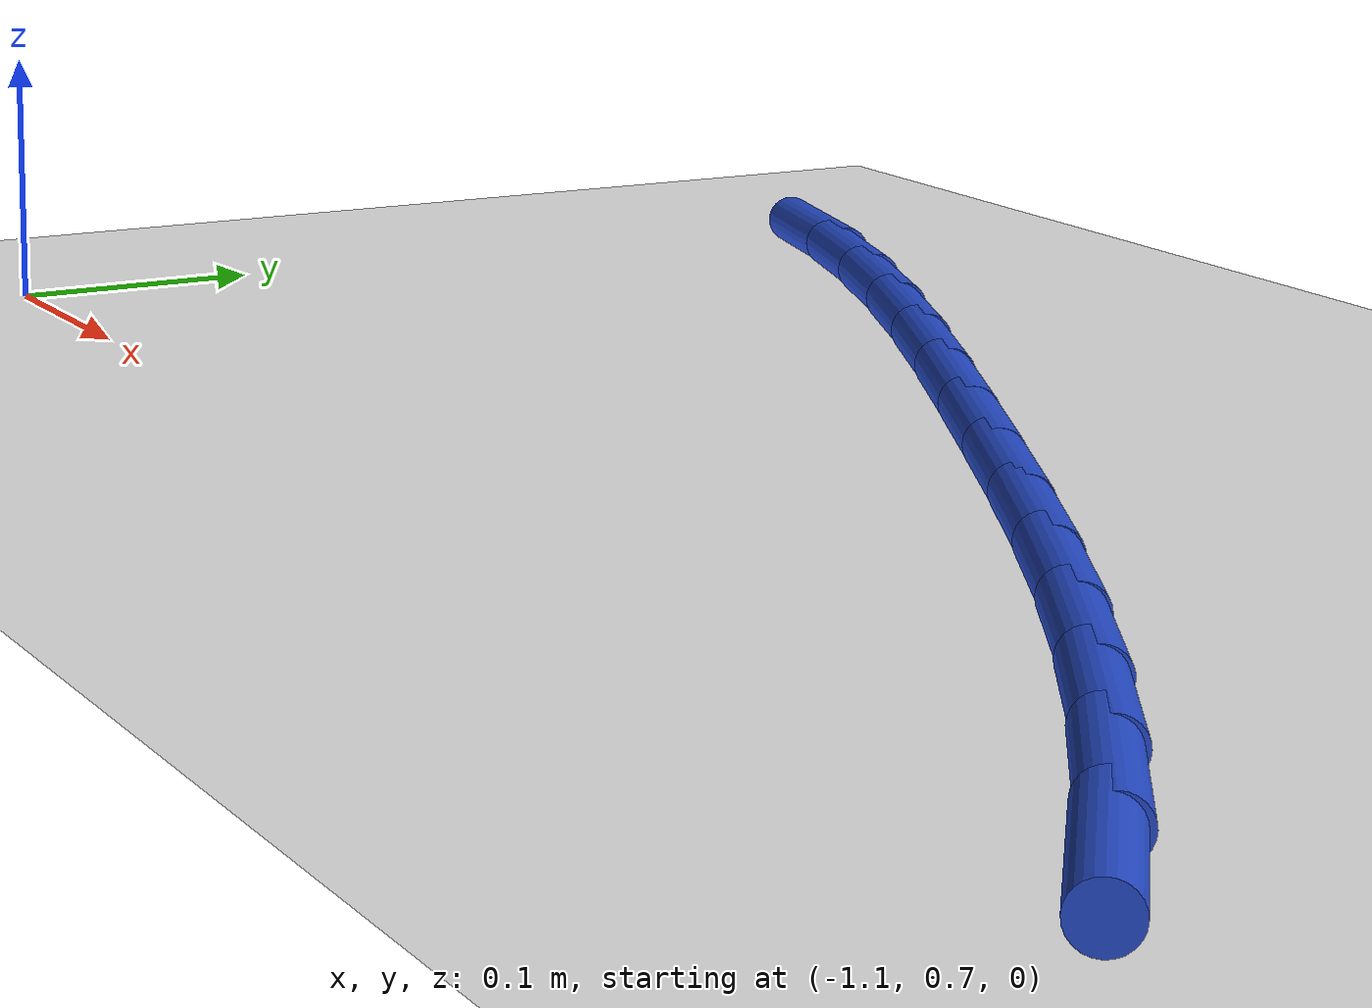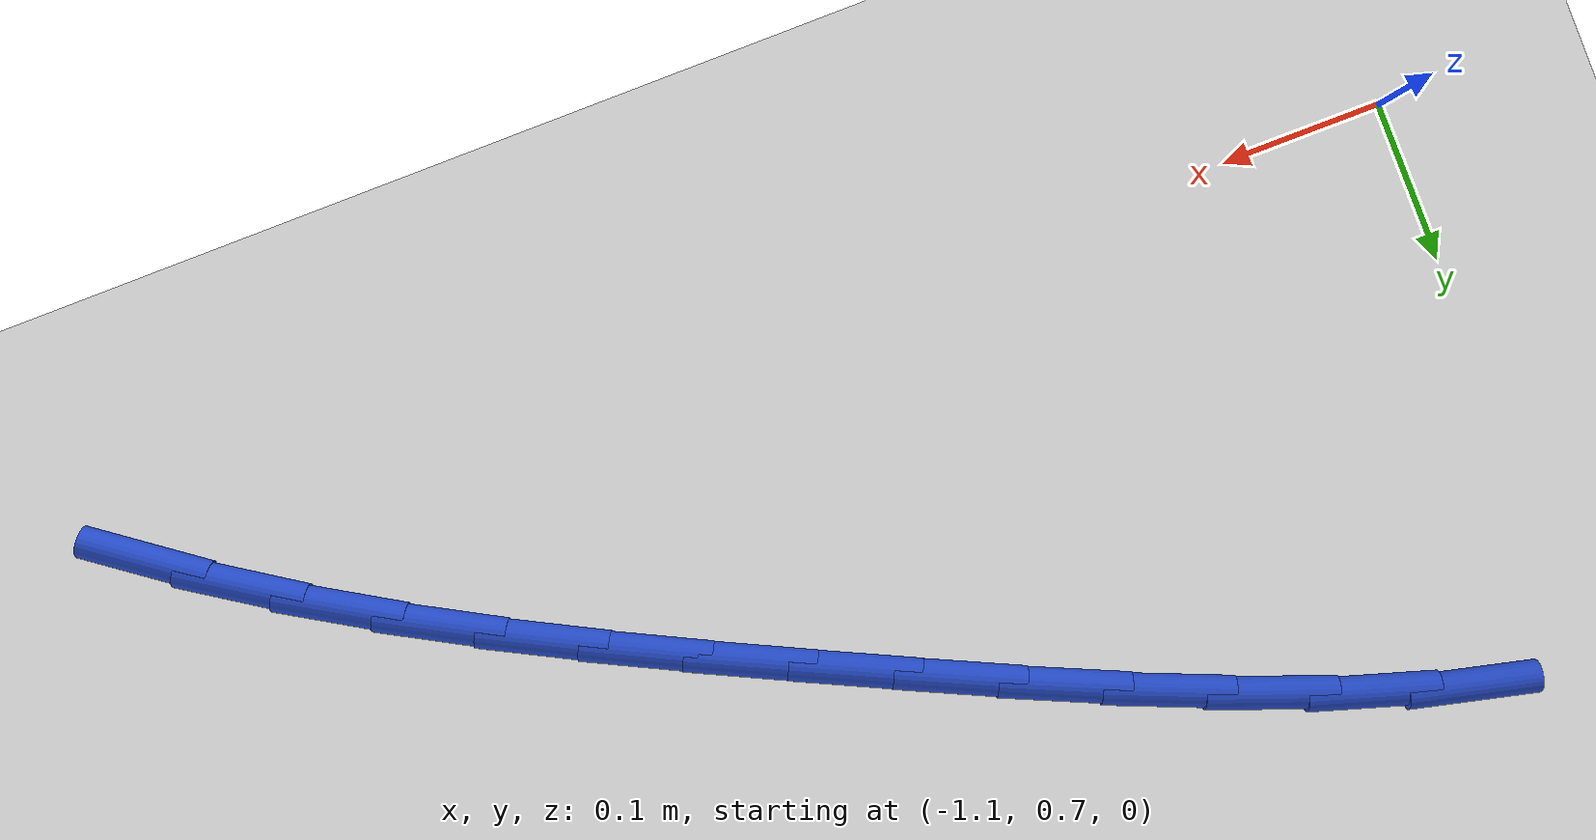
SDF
<sdf version="1.6">
 <world name="default">
  <model name="ground_plane">
   <static>1</static>
   <link name="link">
    <collision name="collision">
     <geometry><plane><normal>0 0 1</normal><size>100 100</size></plane></geometry>
     <surface><friction><ode><mu>100</mu><mu2>50</mu2></ode></friction></surface>
    </collision>
    <visual name="visual">
     <cast_shadows>0</cast_shadows>
     <geometry><plane><normal>0 0 1</normal><size>100 100</size></plane></geometry>
     <material>
      <script><uri>file://media/materials/scripts/gazebo.material</uri><name>Gazebo/WhiteGlow</name></script>
     </material>
    </visual>
   </link>
  </model>
  <model name="line">
   <link name="link_13">
    <pose>-0.3089729433077113 0.6912233041581728 0.01 0 1.57 -0.6314095656174656</pose>
    <collision name="collision">
     <geometry><cylinder><radius>0.01</radius><length>0.08</length></cylinder></geometry>
    </collision>
    <visual name="visual">
     <material>
      <script><name>Gazebo/Blue</name><uri>file://media/materials/scripts/gazebo.material</uri></script>
     </material>
     <geometry><cylinder><radius>0.01</radius><length>0.08</length></cylinder></geometry>
    </visual>
   </link>
   <link name="link_14">
    <pose>-0.3572677027935823 0.7265400956506654 0.01 0 1.57 -0.580872931902967</pose>
    <collision name="collision">
     <geometry><cylinder><radius>0.01</radius><length>0.08</length></cylinder></geometry>
    </collision>
    <visual name="visual">
     <material>
      <script><name>Gazebo/Blue</name><uri>file://media/materials/scripts/gazebo.material</uri></script>
     </material>
     <geometry><cylinder><radius>0.01</radius><length>0.08</length></cylinder></geometry>
    </visual>
   </link>
   <link name="link_15">
    <pose>-0.40787252899246995 0.7597579535868132 0.01 0 1.57 -0.5388151369885515</pose>
    <collision name="collision">
     <geometry><cylinder><radius>0.01</radius><length>0.08</length></cylinder></geometry>
    </collision>
    <visual name="visual">
     <material>
      <script><name>Gazebo/Blue</name><uri>file://media/materials/scripts/gazebo.material</uri></script>
     </material>
     <geometry><cylinder><radius>0.01</radius><length>0.08</length></cylinder></geometry>
    </visual>
   </link>
   <link name="link_16">
    <pose>-0.460426312462231 0.7911756649563323 0.01 0 1.57 -0.5048044429637035</pose>
    <collision name="collision">
     <geometry><cylinder><radius>0.01</radius><length>0.08</length></cylinder></geometry>
    </collision>
    <visual name="visual">
     <material>
      <script><name>Gazebo/Blue</name><uri>file://media/materials/scripts/gazebo.material</uri></script>
     </material>
     <geometry><cylinder><radius>0.01</radius><length>0.08</length></cylinder></geometry>
    </visual>
   </link>
   <link name="link_17">
    <pose>-0.514567943760722 0.8210920167489386 0.01 0 1.57 -0.4784129831209513</pose>
    <collision name="collision">
     <geometry><cylinder><radius>0.01</radius><length>0.08</length></cylinder></geometry>
    </collision>
    <visual name="visual">
     <material>
      <script><name>Gazebo/Blue</name><uri>file://media/materials/scripts/gazebo.material</uri></script>
     </material>
     <geometry><cylinder><radius>0.01</radius><length>0.08</length></cylinder></geometry>
    </visual>
   </link>
   <link name="link_18">
    <pose>-0.5699363134458002 0.8498057959543487 0.01 0 1.57 -0.45927053253555294</pose>
    <collision name="collision">
     <geometry><cylinder><radius>0.01</radius><length>0.08</length></cylinder></geometry>
    </collision>
    <visual name="visual">
     <material>
      <script><name>Gazebo/Blue</name><uri>file://media/materials/scripts/gazebo.material</uri></script>
     </material>
     <geometry><cylinder><radius>0.01</radius><length>0.08</length></cylinder></geometry>
    </visual>
   </link>
   <link name="link_19">
    <pose>-0.6261703120753221 0.8776157895622786 0.01 0 1.57 -0.44709741062055497</pose>
    <collision name="collision">
     <geometry><cylinder><radius>0.01</radius><length>0.08</length></cylinder></geometry>
    </collision>
    <visual name="visual">
     <material>
      <script><name>Gazebo/Blue</name><uri>file://media/materials/scripts/gazebo.material</uri></script>
     </material>
     <geometry><cylinder><radius>0.01</radius><length>0.08</length></cylinder></geometry>
    </visual>
   </link>
   <link name="link_20">
    <pose>-0.6829088302071447 0.9048207845624445 0.01 0 1.57 -0.44143638289159653</pose>
    <collision name="collision">
     <geometry><cylinder><radius>0.01</radius><length>0.08</length></cylinder></geometry>
    </collision>
    <visual name="visual">
     <material>
      <script><name>Gazebo/Blue</name><uri>file://media/materials/scripts/gazebo.material</uri></script>
     </material>
     <geometry><cylinder><radius>0.01</radius><length>0.08</length></cylinder></geometry>
    </visual>
   </link>
   <link name="link_21">
    <pose>-0.7397977369960708 0.9317028666489017 0.01 0 1.57 -0.434395775394906</pose>
    <collision name="collision">
     <geometry><cylinder><radius>0.01</radius><length>0.08</length></cylinder></geometry>
    </collision>
    <visual name="visual">
     <material>
      <script><name>Gazebo/Blue</name><uri>file://media/materials/scripts/gazebo.material</uri></script>
     </material>
     <geometry><cylinder><radius>0.01</radius><length>0.08</length></cylinder></geometry>
    </visual>
   </link>
   <link name="link_22">
    <pose>-0.7966726175010431 0.9580900902210354 0.01 0 1.57 -0.4172426702991175</pose>
    <collision name="collision">
     <geometry><cylinder><radius>0.01</radius><length>0.08</length></cylinder></geometry>
    </collision>
    <visual name="visual">
     <material>
      <script><name>Gazebo/Blue</name><uri>file://media/materials/scripts/gazebo.material</uri></script>
     </material>
     <geometry><cylinder><radius>0.01</radius><length>0.08</length></cylinder></geometry>
    </visual>
   </link>
   <link name="link_23">
    <pose>-0.8535765753050231 0.9833138728540498 0.01 0 1.57 -0.38912688224039793</pose>
    <collision name="collision">
     <geometry><cylinder><radius>0.01</radius><length>0.08</length></cylinder></geometry>
    </collision>
    <visual name="visual">
     <material>
      <script><name>Gazebo/Blue</name><uri>file://media/materials/scripts/gazebo.material</uri></script>
     </material>
     <geometry><cylinder><radius>0.01</radius><length>0.08</length></cylinder></geometry>
    </visual>
   </link>
   <link name="link_24">
    <pose>-0.9105632620935467 1.0066803882265423 0.01 0 1.57 -0.3494418291037727</pose>
    <collision name="collision">
     <geometry><cylinder><radius>0.01</radius><length>0.08</length></cylinder></geometry>
    </collision>
    <visual name="visual">
     <material>
      <script><name>Gazebo/Blue</name><uri>file://media/materials/scripts/gazebo.material</uri></script>
     </material>
     <geometry><cylinder><radius>0.01</radius><length>0.08</length></cylinder></geometry>
    </visual>
   </link>
   <link name="link_25">
    <pose>-0.9676863295521503 1.0274958100171117 0.01 0 1.57 -0.29747376194526953</pose>
    <collision name="collision">
     <geometry><cylinder><radius>0.01</radius><length>0.08</length></cylinder></geometry>
    </collision>
    <visual name="visual">
     <material>
      <script><name>Gazebo/Blue</name><uri>file://media/materials/scripts/gazebo.material</uri></script>
     </material>
     <geometry><cylinder><radius>0.01</radius><length>0.08</length></cylinder></geometry>
    </visual>
   </link>
   <link name="link_26">
    <pose>-1.0249994293663705 1.0450663119043566 0.01 0 1.57 -0.23255506309646157</pose>
    <collision name="collision">
     <geometry><cylinder><radius>0.01</radius><length>0.08</length></cylinder></geometry>
    </collision>
    <visual name="visual">
     <material>
      <script><name>Gazebo/Blue</name><uri>file://media/materials/scripts/gazebo.material</uri></script>
     </material>
     <geometry><cylinder><radius>0.01</radius><length>0.08</length></cylinder></geometry>
    </visual>
   </link>
  </model>
 </world>
</sdf>
